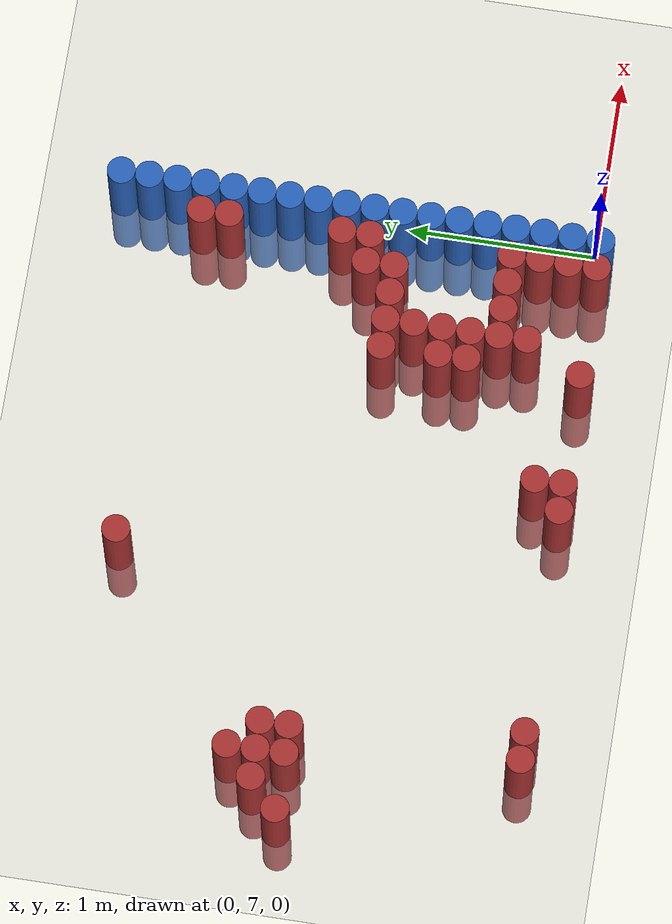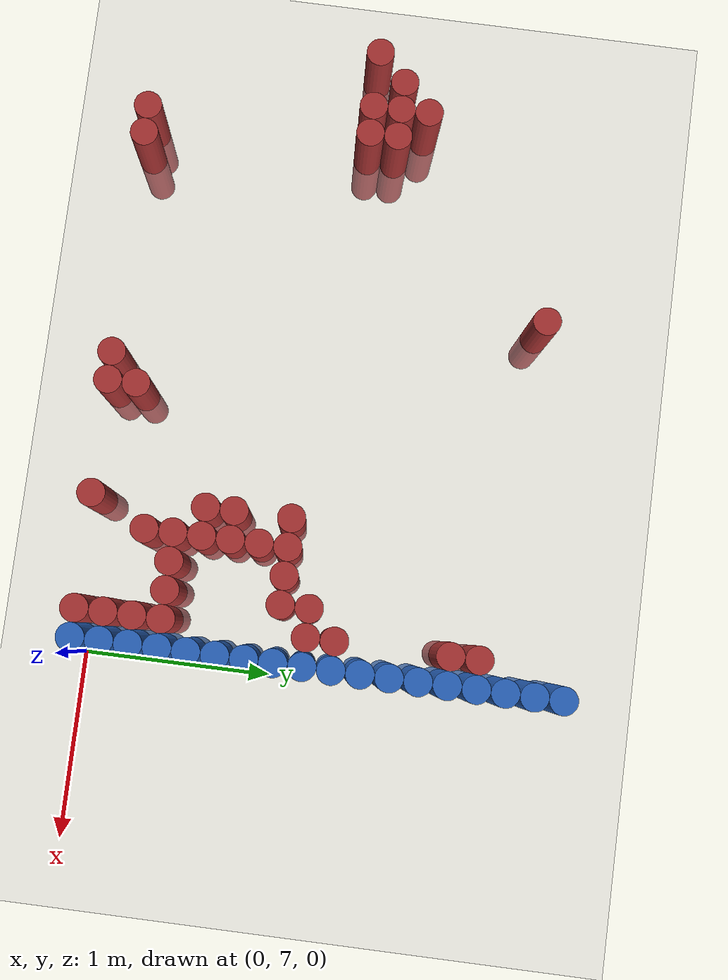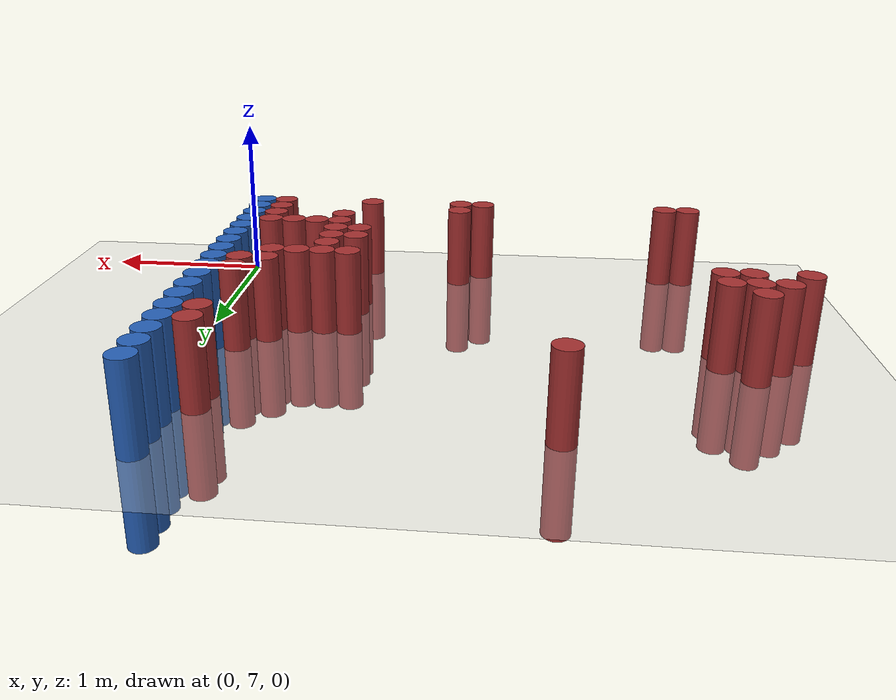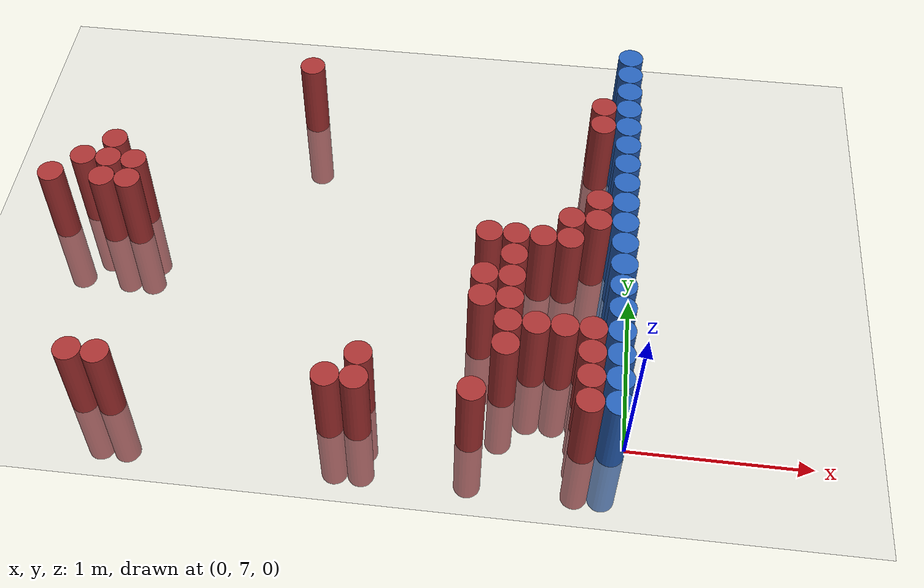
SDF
<sdf version="1.6">
 <world name="default">
  <model name="ground_plane">
   <static>1</static>
   <link name="link">
    <collision name="collision">
     <geometry><plane><normal>0 0 1</normal><size>100 100</size></plane></geometry>
     <surface><friction><ode><mu>100</mu><mu2>50</mu2></ode></friction></surface>
    </collision>
    <visual name="visual">
     <cast_shadows>0</cast_shadows>
     <geometry><plane><normal>0 0 1</normal><size>100 100</size></plane></geometry>
     <material>
      <script><uri>file://media/materials/scripts/gazebo.material</uri><name>Gazebo/Grey</name></script>
     </material>
    </visual>
   </link>
  </model>
  <model name="unit_cylinder_160">
   <static>1</static>
   <pose>-3.375000 8.175000 0.000000 0.000000 0.000000 0.000000</pose>
   <link name="link">
    <inertial>
     <mass>1</mass>
     <inertia><ixx>0.145833</ixx><ixy>0</ixy><ixz>0</ixz><iyy>0.145833</iyy><iyz>0</iyz><izz>0.125</izz></inertia>
    </inertial>
    <collision name="collision">
     <geometry><cylinder><radius>0.075000</radius><length>1</length></cylinder></geometry>
    </collision>
    <visual name="visual">
     <geometry><cylinder><radius>0.075000</radius><length>1</length></cylinder></geometry>
     <material>
      <ambient>0.648000 0.192000 0.192000 1</ambient>
      <diffuse>0.648000 0.192000 0.192000 1</diffuse>
     </material>
     <material>
      <script><name>Gazebo/Grey</name><uri>file://media/materials/scripts/gazebo.material</uri></script>
     </material>
    </visual>
   </link>
  </model>
  <model name="unit_cylinder_161">
   <static>1</static>
   <pose>-3.225000 8.325000 0.000000 0.000000 0.000000 0.000000</pose>
   <link name="link">
    <inertial>
     <mass>1</mass>
     <inertia><ixx>0.145833</ixx><ixy>0</ixy><ixz>0</ixz><iyy>0.145833</iyy><iyz>0</iyz><izz>0.125</izz></inertia>
    </inertial>
    <collision name="collision">
     <geometry><cylinder><radius>0.075000</radius><length>1</length></cylinder></geometry>
    </collision>
    <visual name="visual">
     <geometry><cylinder><radius>0.075000</radius><length>1</length></cylinder></geometry>
     <material>
      <ambient>0.648000 0.192000 0.192000 1</ambient>
      <diffuse>0.648000 0.192000 0.192000 1</diffuse>
     </material>
     <material>
      <script><name>Gazebo/Grey</name><uri>file://media/materials/scripts/gazebo.material</uri></script>
     </material>
    </visual>
   </link>
  </model>
  <model name="unit_cylinder_163">
   <static>1</static>
   <pose>-3.075000 8.175000 0.000000 0.000000 0.000000 0.000000</pose>
   <link name="link">
    <inertial>
     <mass>1</mass>
     <inertia><ixx>0.145833</ixx><ixy>0</ixy><ixz>0</ixz><iyy>0.145833</iyy><iyz>0</iyz><izz>0.125</izz></inertia>
    </inertial>
    <collision name="collision">
     <geometry><cylinder><radius>0.075000</radius><length>1</length></cylinder></geometry>
    </collision>
    <visual name="visual">
     <geometry><cylinder><radius>0.075000</radius><length>1</length></cylinder></geometry>
     <material>
      <ambient>0.648000 0.192000 0.192000 1</ambient>
      <diffuse>0.648000 0.192000 0.192000 1</diffuse>
     </material>
     <material>
      <script><name>Gazebo/Grey</name><uri>file://media/materials/scripts/gazebo.material</uri></script>
     </material>
    </visual>
   </link>
  </model>
  <model name="unit_cylinder_164">
   <static>1</static>
   <pose>-3.075000 8.325000 0.000000 0.000000 0.000000 0.000000</pose>
   <link name="link">
    <inertial>
     <mass>1</mass>
     <inertia><ixx>0.145833</ixx><ixy>0</ixy><ixz>0</ixz><iyy>0.145833</iyy><iyz>0</iyz><izz>0.125</izz></inertia>
    </inertial>
    <collision name="collision">
     <geometry><cylinder><radius>0.075000</radius><length>1</length></cylinder></geometry>
    </collision>
    <visual name="visual">
     <geometry><cylinder><radius>0.075000</radius><length>1</length></cylinder></geometry>
     <material>
      <ambient>0.648000 0.192000 0.192000 1</ambient>
      <diffuse>0.648000 0.192000 0.192000 1</diffuse>
     </material>
     <material>
      <script><name>Gazebo/Grey</name><uri>file://media/materials/scripts/gazebo.material</uri></script>
     </material>
    </visual>
   </link>
  </model>
  <model name="unit_cylinder_165">
   <static>1</static>
   <pose>-3.075000 8.475000 0.000000 0.000000 0.000000 0.000000</pose>
   <link name="link">
    <inertial>
     <mass>1</mass>
     <inertia><ixx>0.145833</ixx><ixy>0</ixy><ixz>0</ixz><iyy>0.145833</iyy><iyz>0</iyz><izz>0.125</izz></inertia>
    </inertial>
    <collision name="collision">
     <geometry><cylinder><radius>0.075000</radius><length>1</length></cylinder></geometry>
    </collision>
    <visual name="visual">
     <geometry><cylinder><radius>0.075000</radius><length>1</length></cylinder></geometry>
     <material>
      <ambient>0.648000 0.192000 0.192000 1</ambient>
      <diffuse>0.648000 0.192000 0.192000 1</diffuse>
     </material>
     <material>
      <script><name>Gazebo/Grey</name><uri>file://media/materials/scripts/gazebo.material</uri></script>
     </material>
    </visual>
   </link>
  </model>
  <model name="unit_cylinder_169">
   <static>1</static>
   <pose>-2.925000 6.975000 0.000000 0.000000 0.000000 0.000000</pose>
   <link name="link">
    <inertial>
     <mass>1</mass>
     <inertia><ixx>0.145833</ixx><ixy>0</ixy><ixz>0</ixz><iyy>0.145833</iyy><iyz>0</iyz><izz>0.125</izz></inertia>
    </inertial>
    <collision name="collision">
     <geometry><cylinder><radius>0.075000</radius><length>1</length></cylinder></geometry>
    </collision>
    <visual name="visual">
     <geometry><cylinder><radius>0.075000</radius><length>1</length></cylinder></geometry>
     <material>
      <ambient>0.648000 0.192000 0.192000 1</ambient>
      <diffuse>0.648000 0.192000 0.192000 1</diffuse>
     </material>
     <material>
      <script><name>Gazebo/Grey</name><uri>file://media/materials/scripts/gazebo.material</uri></script>
     </material>
    </visual>
   </link>
  </model>
  <model name="unit_cylinder_170">
   <static>1</static>
   <pose>-2.925000 8.175000 0.000000 0.000000 0.000000 0.000000</pose>
   <link name="link">
    <inertial>
     <mass>1</mass>
     <inertia><ixx>0.145833</ixx><ixy>0</ixy><ixz>0</ixz><iyy>0.145833</iyy><iyz>0</iyz><izz>0.125</izz></inertia>
    </inertial>
    <collision name="collision">
     <geometry><cylinder><radius>0.075000</radius><length>1</length></cylinder></geometry>
    </collision>
    <visual name="visual">
     <geometry><cylinder><radius>0.075000</radius><length>1</length></cylinder></geometry>
     <material>
      <ambient>0.648000 0.192000 0.192000 1</ambient>
      <diffuse>0.648000 0.192000 0.192000 1</diffuse>
     </material>
     <material>
      <script><name>Gazebo/Grey</name><uri>file://media/materials/scripts/gazebo.material</uri></script>
     </material>
    </visual>
   </link>
  </model>
  <model name="unit_cylinder_171">
   <static>1</static>
   <pose>-2.925000 8.325000 0.000000 0.000000 0.000000 0.000000</pose>
   <link name="link">
    <inertial>
     <mass>1</mass>
     <inertia><ixx>0.145833</ixx><ixy>0</ixy><ixz>0</ixz><iyy>0.145833</iyy><iyz>0</iyz><izz>0.125</izz></inertia>
    </inertial>
    <collision name="collision">
     <geometry><cylinder><radius>0.075000</radius><length>1</length></cylinder></geometry>
    </collision>
    <visual name="visual">
     <geometry><cylinder><radius>0.075000</radius><length>1</length></cylinder></geometry>
     <material>
      <ambient>0.648000 0.192000 0.192000 1</ambient>
      <diffuse>0.648000 0.192000 0.192000 1</diffuse>
     </material>
     <material>
      <script><name>Gazebo/Grey</name><uri>file://media/materials/scripts/gazebo.material</uri></script>
     </material>
    </visual>
   </link>
  </model>
  <model name="unit_cylinder_177">
   <static>1</static>
   <pose>-2.775000 6.975000 0.000000 0.000000 0.000000 0.000000</pose>
   <link name="link">
    <inertial>
     <mass>1</mass>
     <inertia><ixx>0.145833</ixx><ixy>0</ixy><ixz>0</ixz><iyy>0.145833</iyy><iyz>0</iyz><izz>0.125</izz></inertia>
    </inertial>
    <collision name="collision">
     <geometry><cylinder><radius>0.075000</radius><length>1</length></cylinder></geometry>
    </collision>
    <visual name="visual">
     <geometry><cylinder><radius>0.075000</radius><length>1</length></cylinder></geometry>
     <material>
      <ambient>0.648000 0.192000 0.192000 1</ambient>
      <diffuse>0.648000 0.192000 0.192000 1</diffuse>
     </material>
     <material>
      <script><name>Gazebo/Grey</name><uri>file://media/materials/scripts/gazebo.material</uri></script>
     </material>
    </visual>
   </link>
  </model>
  <model name="unit_cylinder_180">
   <static>1</static>
   <pose>-2.025000 9.225000 0.000000 0.000000 0.000000 0.000000</pose>
   <link name="link">
    <inertial>
     <mass>1</mass>
     <inertia><ixx>0.145833</ixx><ixy>0</ixy><ixz>0</ixz><iyy>0.145833</iyy><iyz>0</iyz><izz>0.125</izz></inertia>
    </inertial>
    <collision name="collision">
     <geometry><cylinder><radius>0.075000</radius><length>1</length></cylinder></geometry>
    </collision>
    <visual name="visual">
     <geometry><cylinder><radius>0.075000</radius><length>1</length></cylinder></geometry>
     <material>
      <ambient>0.648000 0.192000 0.192000 1</ambient>
      <diffuse>0.648000 0.192000 0.192000 1</diffuse>
     </material>
     <material>
      <script><name>Gazebo/Grey</name><uri>file://media/materials/scripts/gazebo.material</uri></script>
     </material>
    </visual>
   </link>
  </model>
  <model name="unit_cylinder_187">
   <static>1</static>
   <pose>-1.575000 6.975000 0.000000 0.000000 0.000000 0.000000</pose>
   <link name="link">
    <inertial>
     <mass>1</mass>
     <inertia><ixx>0.145833</ixx><ixy>0</ixy><ixz>0</ixz><iyy>0.145833</iyy><iyz>0</iyz><izz>0.125</izz></inertia>
    </inertial>
    <collision name="collision">
     <geometry><cylinder><radius>0.075000</radius><length>1</length></cylinder></geometry>
    </collision>
    <visual name="visual">
     <geometry><cylinder><radius>0.075000</radius><length>1</length></cylinder></geometry>
     <material>
      <ambient>0.648000 0.192000 0.192000 1</ambient>
      <diffuse>0.648000 0.192000 0.192000 1</diffuse>
     </material>
     <material>
      <script><name>Gazebo/Grey</name><uri>file://media/materials/scripts/gazebo.material</uri></script>
     </material>
    </visual>
   </link>
  </model>
  <model name="unit_cylinder_191">
   <static>1</static>
   <pose>-1.425000 6.975000 0.000000 0.000000 0.000000 0.000000</pose>
   <link name="link">
    <inertial>
     <mass>1</mass>
     <inertia><ixx>0.145833</ixx><ixy>0</ixy><ixz>0</ixz><iyy>0.145833</iyy><iyz>0</iyz><izz>0.125</izz></inertia>
    </inertial>
    <collision name="collision">
     <geometry><cylinder><radius>0.075000</radius><length>1</length></cylinder></geometry>
    </collision>
    <visual name="visual">
     <geometry><cylinder><radius>0.075000</radius><length>1</length></cylinder></geometry>
     <material>
      <ambient>0.648000 0.192000 0.192000 1</ambient>
      <diffuse>0.648000 0.192000 0.192000 1</diffuse>
     </material>
     <material>
      <script><name>Gazebo/Grey</name><uri>file://media/materials/scripts/gazebo.material</uri></script>
     </material>
    </visual>
   </link>
  </model>
  <model name="unit_cylinder_192">
   <static>1</static>
   <pose>-1.425000 7.125000 0.000000 0.000000 0.000000 0.000000</pose>
   <link name="link">
    <inertial>
     <mass>1</mass>
     <inertia><ixx>0.145833</ixx><ixy>0</ixy><ixz>0</ixz><iyy>0.145833</iyy><iyz>0</iyz><izz>0.125</izz></inertia>
    </inertial>
    <collision name="collision">
     <geometry><cylinder><radius>0.075000</radius><length>1</length></cylinder></geometry>
    </collision>
    <visual name="visual">
     <geometry><cylinder><radius>0.075000</radius><length>1</length></cylinder></geometry>
     <material>
      <ambient>0.648000 0.192000 0.192000 1</ambient>
      <diffuse>0.648000 0.192000 0.192000 1</diffuse>
     </material>
     <material>
      <script><name>Gazebo/Grey</name><uri>file://media/materials/scripts/gazebo.material</uri></script>
     </material>
    </visual>
   </link>
  </model>
  <model name="unit_cylinder_202">
   <static>1</static>
   <pose>-0.825000 6.975000 0.000000 0.000000 0.000000 0.000000</pose>
   <link name="link">
    <inertial>
     <mass>1</mass>
     <inertia><ixx>0.145833</ixx><ixy>0</ixy><ixz>0</ixz><iyy>0.145833</iyy><iyz>0</iyz><izz>0.125</izz></inertia>
    </inertial>
    <collision name="collision">
     <geometry><cylinder><radius>0.075000</radius><length>1</length></cylinder></geometry>
    </collision>
    <visual name="visual">
     <geometry><cylinder><radius>0.075000</radius><length>1</length></cylinder></geometry>
     <material>
      <ambient>0.648000 0.192000 0.192000 1</ambient>
      <diffuse>0.648000 0.192000 0.192000 1</diffuse>
     </material>
     <material>
      <script><name>Gazebo/Grey</name><uri>file://media/materials/scripts/gazebo.material</uri></script>
     </material>
    </visual>
   </link>
  </model>
  <model name="unit_cylinder_203">
   <static>1</static>
   <pose>-0.825000 7.575000 0.000000 0.000000 0.000000 0.000000</pose>
   <link name="link">
    <inertial>
     <mass>1</mass>
     <inertia><ixx>0.145833</ixx><ixy>0</ixy><ixz>0</ixz><iyy>0.145833</iyy><iyz>0</iyz><izz>0.125</izz></inertia>
    </inertial>
    <collision name="collision">
     <geometry><cylinder><radius>0.075000</radius><length>1</length></cylinder></geometry>
    </collision>
    <visual name="visual">
     <geometry><cylinder><radius>0.075000</radius><length>1</length></cylinder></geometry>
     <material>
      <ambient>0.648000 0.192000 0.192000 1</ambient>
      <diffuse>0.648000 0.192000 0.192000 1</diffuse>
     </material>
     <material>
      <script><name>Gazebo/Grey</name><uri>file://media/materials/scripts/gazebo.material</uri></script>
     </material>
    </visual>
   </link>
  </model>
  <model name="unit_cylinder_204">
   <static>1</static>
   <pose>-0.825000 7.725000 0.000000 0.000000 0.000000 0.000000</pose>
   <link name="link">
    <inertial>
     <mass>1</mass>
     <inertia><ixx>0.145833</ixx><ixy>0</ixy><ixz>0</ixz><iyy>0.145833</iyy><iyz>0</iyz><izz>0.125</izz></inertia>
    </inertial>
    <collision name="collision">
     <geometry><cylinder><radius>0.075000</radius><length>1</length></cylinder></geometry>
    </collision>
    <visual name="visual">
     <geometry><cylinder><radius>0.075000</radius><length>1</length></cylinder></geometry>
     <material>
      <ambient>0.648000 0.192000 0.192000 1</ambient>
      <diffuse>0.648000 0.192000 0.192000 1</diffuse>
     </material>
     <material>
      <script><name>Gazebo/Grey</name><uri>file://media/materials/scripts/gazebo.material</uri></script>
     </material>
    </visual>
   </link>
  </model>
  <model name="unit_cylinder_205">
   <static>1</static>
   <pose>-0.825000 8.025000 0.000000 0.000000 0.000000 0.000000</pose>
   <link name="link">
    <inertial>
     <mass>1</mass>
     <inertia><ixx>0.145833</ixx><ixy>0</ixy><ixz>0</ixz><iyy>0.145833</iyy><iyz>0</iyz><izz>0.125</izz></inertia>
    </inertial>
    <collision name="collision">
     <geometry><cylinder><radius>0.075000</radius><length>1</length></cylinder></geometry>
    </collision>
    <visual name="visual">
     <geometry><cylinder><radius>0.075000</radius><length>1</length></cylinder></geometry>
     <material>
      <ambient>0.648000 0.192000 0.192000 1</ambient>
      <diffuse>0.648000 0.192000 0.192000 1</diffuse>
     </material>
     <material>
      <script><name>Gazebo/Grey</name><uri>file://media/materials/scripts/gazebo.material</uri></script>
     </material>
    </visual>
   </link>
  </model>
  <model name="unit_cylinder_206">
   <static>1</static>
   <pose>-0.675000 7.275000 0.000000 0.000000 0.000000 0.000000</pose>
   <link name="link">
    <inertial>
     <mass>1</mass>
     <inertia><ixx>0.145833</ixx><ixy>0</ixy><ixz>0</ixz><iyy>0.145833</iyy><iyz>0</iyz><izz>0.125</izz></inertia>
    </inertial>
    <collision name="collision">
     <geometry><cylinder><radius>0.075000</radius><length>1</length></cylinder></geometry>
    </collision>
    <visual name="visual">
     <geometry><cylinder><radius>0.075000</radius><length>1</length></cylinder></geometry>
     <material>
      <ambient>0.648000 0.192000 0.192000 1</ambient>
      <diffuse>0.648000 0.192000 0.192000 1</diffuse>
     </material>
     <material>
      <script><name>Gazebo/Grey</name><uri>file://media/materials/scripts/gazebo.material</uri></script>
     </material>
    </visual>
   </link>
  </model>
  <model name="unit_cylinder_207">
   <static>1</static>
   <pose>-0.675000 7.425000 0.000000 0.000000 0.000000 0.000000</pose>
   <link name="link">
    <inertial>
     <mass>1</mass>
     <inertia><ixx>0.145833</ixx><ixy>0</ixy><ixz>0</ixz><iyy>0.145833</iyy><iyz>0</iyz><izz>0.125</izz></inertia>
    </inertial>
    <collision name="collision">
     <geometry><cylinder><radius>0.075000</radius><length>1</length></cylinder></geometry>
    </collision>
    <visual name="visual">
     <geometry><cylinder><radius>0.075000</radius><length>1</length></cylinder></geometry>
     <material>
      <ambient>0.648000 0.192000 0.192000 1</ambient>
      <diffuse>0.648000 0.192000 0.192000 1</diffuse>
     </material>
     <material>
      <script><name>Gazebo/Grey</name><uri>file://media/materials/scripts/gazebo.material</uri></script>
     </material>
    </visual>
   </link>
  </model>
  <model name="unit_cylinder_208">
   <static>1</static>
   <pose>-0.675000 7.575000 0.000000 0.000000 0.000000 0.000000</pose>
   <link name="link">
    <inertial>
     <mass>1</mass>
     <inertia><ixx>0.145833</ixx><ixy>0</ixy><ixz>0</ixz><iyy>0.145833</iyy><iyz>0</iyz><izz>0.125</izz></inertia>
    </inertial>
    <collision name="collision">
     <geometry><cylinder><radius>0.075000</radius><length>1</length></cylinder></geometry>
    </collision>
    <visual name="visual">
     <geometry><cylinder><radius>0.075000</radius><length>1</length></cylinder></geometry>
     <material>
      <ambient>0.648000 0.192000 0.192000 1</ambient>
      <diffuse>0.648000 0.192000 0.192000 1</diffuse>
     </material>
     <material>
      <script><name>Gazebo/Grey</name><uri>file://media/materials/scripts/gazebo.material</uri></script>
     </material>
    </visual>
   </link>
  </model>
  <model name="unit_cylinder_209">
   <static>1</static>
   <pose>-0.675000 7.725000 0.000000 0.000000 0.000000 0.000000</pose>
   <link name="link">
    <inertial>
     <mass>1</mass>
     <inertia><ixx>0.145833</ixx><ixy>0</ixy><ixz>0</ixz><iyy>0.145833</iyy><iyz>0</iyz><izz>0.125</izz></inertia>
    </inertial>
    <collision name="collision">
     <geometry><cylinder><radius>0.075000</radius><length>1</length></cylinder></geometry>
    </collision>
    <visual name="visual">
     <geometry><cylinder><radius>0.075000</radius><length>1</length></cylinder></geometry>
     <material>
      <ambient>0.648000 0.192000 0.192000 1</ambient>
      <diffuse>0.648000 0.192000 0.192000 1</diffuse>
     </material>
     <material>
      <script><name>Gazebo/Grey</name><uri>file://media/materials/scripts/gazebo.material</uri></script>
     </material>
    </visual>
   </link>
  </model>
  <model name="unit_cylinder_210">
   <static>1</static>
   <pose>-0.675000 7.875000 0.000000 0.000000 0.000000 0.000000</pose>
   <link name="link">
    <inertial>
     <mass>1</mass>
     <inertia><ixx>0.145833</ixx><ixy>0</ixy><ixz>0</ixz><iyy>0.145833</iyy><iyz>0</iyz><izz>0.125</izz></inertia>
    </inertial>
    <collision name="collision">
     <geometry><cylinder><radius>0.075000</radius><length>1</length></cylinder></geometry>
    </collision>
    <visual name="visual">
     <geometry><cylinder><radius>0.075000</radius><length>1</length></cylinder></geometry>
     <material>
      <ambient>0.648000 0.192000 0.192000 1</ambient>
      <diffuse>0.648000 0.192000 0.192000 1</diffuse>
     </material>
     <material>
      <script><name>Gazebo/Grey</name><uri>file://media/materials/scripts/gazebo.material</uri></script>
     </material>
    </visual>
   </link>
  </model>
  <model name="unit_cylinder_211">
   <static>1</static>
   <pose>-0.675000 8.025000 0.000000 0.000000 0.000000 0.000000</pose>
   <link name="link">
    <inertial>
     <mass>1</mass>
     <inertia><ixx>0.145833</ixx><ixy>0</ixy><ixz>0</ixz><iyy>0.145833</iyy><iyz>0</iyz><izz>0.125</izz></inertia>
    </inertial>
    <collision name="collision">
     <geometry><cylinder><radius>0.075000</radius><length>1</length></cylinder></geometry>
    </collision>
    <visual name="visual">
     <geometry><cylinder><radius>0.075000</radius><length>1</length></cylinder></geometry>
     <material>
      <ambient>0.648000 0.192000 0.192000 1</ambient>
      <diffuse>0.648000 0.192000 0.192000 1</diffuse>
     </material>
     <material>
      <script><name>Gazebo/Grey</name><uri>file://media/materials/scripts/gazebo.material</uri></script>
     </material>
    </visual>
   </link>
  </model>
  <model name="unit_cylinder_212">
   <static>1</static>
   <pose>-0.525000 7.425000 0.000000 0.000000 0.000000 0.000000</pose>
   <link name="link">
    <inertial>
     <mass>1</mass>
     <inertia><ixx>0.145833</ixx><ixy>0</ixy><ixz>0</ixz><iyy>0.145833</iyy><iyz>0</iyz><izz>0.125</izz></inertia>
    </inertial>
    <collision name="collision">
     <geometry><cylinder><radius>0.075000</radius><length>1</length></cylinder></geometry>
    </collision>
    <visual name="visual">
     <geometry><cylinder><radius>0.075000</radius><length>1</length></cylinder></geometry>
     <material>
      <ambient>0.648000 0.192000 0.192000 1</ambient>
      <diffuse>0.648000 0.192000 0.192000 1</diffuse>
     </material>
     <material>
      <script><name>Gazebo/Grey</name><uri>file://media/materials/scripts/gazebo.material</uri></script>
     </material>
    </visual>
   </link>
  </model>
  <model name="unit_cylinder_213">
   <static>1</static>
   <pose>-0.525000 8.025000 0.000000 0.000000 0.000000 0.000000</pose>
   <link name="link">
    <inertial>
     <mass>1</mass>
     <inertia><ixx>0.145833</ixx><ixy>0</ixy><ixz>0</ixz><iyy>0.145833</iyy><iyz>0</iyz><izz>0.125</izz></inertia>
    </inertial>
    <collision name="collision">
     <geometry><cylinder><radius>0.075000</radius><length>1</length></cylinder></geometry>
    </collision>
    <visual name="visual">
     <geometry><cylinder><radius>0.075000</radius><length>1</length></cylinder></geometry>
     <material>
      <ambient>0.648000 0.192000 0.192000 1</ambient>
      <diffuse>0.648000 0.192000 0.192000 1</diffuse>
     </material>
     <material>
      <script><name>Gazebo/Grey</name><uri>file://media/materials/scripts/gazebo.material</uri></script>
     </material>
    </visual>
   </link>
  </model>
  <model name="unit_cylinder_217">
   <static>1</static>
   <pose>-0.375000 7.425000 0.000000 0.000000 0.000000 0.000000</pose>
   <link name="link">
    <inertial>
     <mass>1</mass>
     <inertia><ixx>0.145833</ixx><ixy>0</ixy><ixz>0</ixz><iyy>0.145833</iyy><iyz>0</iyz><izz>0.125</izz></inertia>
    </inertial>
    <collision name="collision">
     <geometry><cylinder><radius>0.075000</radius><length>1</length></cylinder></geometry>
    </collision>
    <visual name="visual">
     <geometry><cylinder><radius>0.075000</radius><length>1</length></cylinder></geometry>
     <material>
      <ambient>0.648000 0.192000 0.192000 1</ambient>
      <diffuse>0.648000 0.192000 0.192000 1</diffuse>
     </material>
     <material>
      <script><name>Gazebo/Grey</name><uri>file://media/materials/scripts/gazebo.material</uri></script>
     </material>
    </visual>
   </link>
  </model>
  <model name="unit_cylinder_218">
   <static>1</static>
   <pose>-0.375000 8.025000 0.000000 0.000000 0.000000 0.000000</pose>
   <link name="link">
    <inertial>
     <mass>1</mass>
     <inertia><ixx>0.145833</ixx><ixy>0</ixy><ixz>0</ixz><iyy>0.145833</iyy><iyz>0</iyz><izz>0.125</izz></inertia>
    </inertial>
    <collision name="collision">
     <geometry><cylinder><radius>0.075000</radius><length>1</length></cylinder></geometry>
    </collision>
    <visual name="visual">
     <geometry><cylinder><radius>0.075000</radius><length>1</length></cylinder></geometry>
     <material>
      <ambient>0.648000 0.192000 0.192000 1</ambient>
      <diffuse>0.648000 0.192000 0.192000 1</diffuse>
     </material>
     <material>
      <script><name>Gazebo/Grey</name><uri>file://media/materials/scripts/gazebo.material</uri></script>
     </material>
    </visual>
   </link>
  </model>
  <model name="unit_cylinder_219">
   <static>1</static>
   <pose>-0.375000 8.175000 0.000000 0.000000 0.000000 0.000000</pose>
   <link name="link">
    <inertial>
     <mass>1</mass>
     <inertia><ixx>0.145833</ixx><ixy>0</ixy><ixz>0</ixz><iyy>0.145833</iyy><iyz>0</iyz><izz>0.125</izz></inertia>
    </inertial>
    <collision name="collision">
     <geometry><cylinder><radius>0.075000</radius><length>1</length></cylinder></geometry>
    </collision>
    <visual name="visual">
     <geometry><cylinder><radius>0.075000</radius><length>1</length></cylinder></geometry>
     <material>
      <ambient>0.648000 0.192000 0.192000 1</ambient>
      <diffuse>0.648000 0.192000 0.192000 1</diffuse>
     </material>
     <material>
      <script><name>Gazebo/Grey</name><uri>file://media/materials/scripts/gazebo.material</uri></script>
     </material>
    </visual>
   </link>
  </model>
  <model name="unit_cylinder_232">
   <static>1</static>
   <pose>-0.225000 6.975000 0.000000 0.000000 0.000000 0.000000</pose>
   <link name="link">
    <inertial>
     <mass>1</mass>
     <inertia><ixx>0.145833</ixx><ixy>0</ixy><ixz>0</ixz><iyy>0.145833</iyy><iyz>0</iyz><izz>0.125</izz></inertia>
    </inertial>
    <collision name="collision">
     <geometry><cylinder><radius>0.075000</radius><length>1</length></cylinder></geometry>
    </collision>
    <visual name="visual">
     <geometry><cylinder><radius>0.075000</radius><length>1</length></cylinder></geometry>
     <material>
      <ambient>0.648000 0.192000 0.192000 1</ambient>
      <diffuse>0.648000 0.192000 0.192000 1</diffuse>
     </material>
     <material>
      <script><name>Gazebo/Grey</name><uri>file://media/materials/scripts/gazebo.material</uri></script>
     </material>
    </visual>
   </link>
  </model>
  <model name="unit_cylinder_233">
   <static>1</static>
   <pose>-0.225000 7.125000 0.000000 0.000000 0.000000 0.000000</pose>
   <link name="link">
    <inertial>
     <mass>1</mass>
     <inertia><ixx>0.145833</ixx><ixy>0</ixy><ixz>0</ixz><iyy>0.145833</iyy><iyz>0</iyz><izz>0.125</izz></inertia>
    </inertial>
    <collision name="collision">
     <geometry><cylinder><radius>0.075000</radius><length>1</length></cylinder></geometry>
    </collision>
    <visual name="visual">
     <geometry><cylinder><radius>0.075000</radius><length>1</length></cylinder></geometry>
     <material>
      <ambient>0.648000 0.192000 0.192000 1</ambient>
      <diffuse>0.648000 0.192000 0.192000 1</diffuse>
     </material>
     <material>
      <script><name>Gazebo/Grey</name><uri>file://media/materials/scripts/gazebo.material</uri></script>
     </material>
    </visual>
   </link>
  </model>
  <model name="unit_cylinder_234">
   <static>1</static>
   <pose>-0.225000 7.275000 0.000000 0.000000 0.000000 0.000000</pose>
   <link name="link">
    <inertial>
     <mass>1</mass>
     <inertia><ixx>0.145833</ixx><ixy>0</ixy><ixz>0</ixz><iyy>0.145833</iyy><iyz>0</iyz><izz>0.125</izz></inertia>
    </inertial>
    <collision name="collision">
     <geometry><cylinder><radius>0.075000</radius><length>1</length></cylinder></geometry>
    </collision>
    <visual name="visual">
     <geometry><cylinder><radius>0.075000</radius><length>1</length></cylinder></geometry>
     <material>
      <ambient>0.648000 0.192000 0.192000 1</ambient>
      <diffuse>0.648000 0.192000 0.192000 1</diffuse>
     </material>
     <material>
      <script><name>Gazebo/Grey</name><uri>file://media/materials/scripts/gazebo.material</uri></script>
     </material>
    </visual>
   </link>
  </model>
  <model name="unit_cylinder_235">
   <static>1</static>
   <pose>-0.225000 7.425000 0.000000 0.000000 0.000000 0.000000</pose>
   <link name="link">
    <inertial>
     <mass>1</mass>
     <inertia><ixx>0.145833</ixx><ixy>0</ixy><ixz>0</ixz><iyy>0.145833</iyy><iyz>0</iyz><izz>0.125</izz></inertia>
    </inertial>
    <collision name="collision">
     <geometry><cylinder><radius>0.075000</radius><length>1</length></cylinder></geometry>
    </collision>
    <visual name="visual">
     <geometry><cylinder><radius>0.075000</radius><length>1</length></cylinder></geometry>
     <material>
      <ambient>0.648000 0.192000 0.192000 1</ambient>
      <diffuse>0.648000 0.192000 0.192000 1</diffuse>
     </material>
     <material>
      <script><name>Gazebo/Grey</name><uri>file://media/materials/scripts/gazebo.material</uri></script>
     </material>
    </visual>
   </link>
  </model>
  <model name="unit_cylinder_236">
   <static>1</static>
   <pose>-0.225000 8.175000 0.000000 0.000000 0.000000 0.000000</pose>
   <link name="link">
    <inertial>
     <mass>1</mass>
     <inertia><ixx>0.145833</ixx><ixy>0</ixy><ixz>0</ixz><iyy>0.145833</iyy><iyz>0</iyz><izz>0.125</izz></inertia>
    </inertial>
    <collision name="collision">
     <geometry><cylinder><radius>0.075000</radius><length>1</length></cylinder></geometry>
    </collision>
    <visual name="visual">
     <geometry><cylinder><radius>0.075000</radius><length>1</length></cylinder></geometry>
     <material>
      <ambient>0.648000 0.192000 0.192000 1</ambient>
      <diffuse>0.648000 0.192000 0.192000 1</diffuse>
     </material>
     <material>
      <script><name>Gazebo/Grey</name><uri>file://media/materials/scripts/gazebo.material</uri></script>
     </material>
    </visual>
   </link>
  </model>
  <model name="unit_cylinder_237">
   <static>1</static>
   <pose>-0.225000 8.325000 0.000000 0.000000 0.000000 0.000000</pose>
   <link name="link">
    <inertial>
     <mass>1</mass>
     <inertia><ixx>0.145833</ixx><ixy>0</ixy><ixz>0</ixz><iyy>0.145833</iyy><iyz>0</iyz><izz>0.125</izz></inertia>
    </inertial>
    <collision name="collision">
     <geometry><cylinder><radius>0.075000</radius><length>1</length></cylinder></geometry>
    </collision>
    <visual name="visual">
     <geometry><cylinder><radius>0.075000</radius><length>1</length></cylinder></geometry>
     <material>
      <ambient>0.648000 0.192000 0.192000 1</ambient>
      <diffuse>0.648000 0.192000 0.192000 1</diffuse>
     </material>
     <material>
      <script><name>Gazebo/Grey</name><uri>file://media/materials/scripts/gazebo.material</uri></script>
     </material>
    </visual>
   </link>
  </model>
  <model name="unit_cylinder_238">
   <static>1</static>
   <pose>-0.225000 8.925000 0.000000 0.000000 0.000000 0.000000</pose>
   <link name="link">
    <inertial>
     <mass>1</mass>
     <inertia><ixx>0.145833</ixx><ixy>0</ixy><ixz>0</ixz><iyy>0.145833</iyy><iyz>0</iyz><izz>0.125</izz></inertia>
    </inertial>
    <collision name="collision">
     <geometry><cylinder><radius>0.075000</radius><length>1</length></cylinder></geometry>
    </collision>
    <visual name="visual">
     <geometry><cylinder><radius>0.075000</radius><length>1</length></cylinder></geometry>
     <material>
      <ambient>0.648000 0.192000 0.192000 1</ambient>
      <diffuse>0.648000 0.192000 0.192000 1</diffuse>
     </material>
     <material>
      <script><name>Gazebo/Grey</name><uri>file://media/materials/scripts/gazebo.material</uri></script>
     </material>
    </visual>
   </link>
  </model>
  <model name="unit_cylinder_239">
   <static>1</static>
   <pose>-0.225000 9.075000 0.000000 0.000000 0.000000 0.000000</pose>
   <link name="link">
    <inertial>
     <mass>1</mass>
     <inertia><ixx>0.145833</ixx><ixy>0</ixy><ixz>0</ixz><iyy>0.145833</iyy><iyz>0</iyz><izz>0.125</izz></inertia>
    </inertial>
    <collision name="collision">
     <geometry><cylinder><radius>0.075000</radius><length>1</length></cylinder></geometry>
    </collision>
    <visual name="visual">
     <geometry><cylinder><radius>0.075000</radius><length>1</length></cylinder></geometry>
     <material>
      <ambient>0.648000 0.192000 0.192000 1</ambient>
      <diffuse>0.648000 0.192000 0.192000 1</diffuse>
     </material>
     <material>
      <script><name>Gazebo/Grey</name><uri>file://media/materials/scripts/gazebo.material</uri></script>
     </material>
    </visual>
   </link>
  </model>
  <model name="unit_cylinder_252">
   <static>1</static>
   <pose>-0.075000 6.975000 0.000000 0.000000 0.000000 0.000000</pose>
   <link name="link">
    <inertial>
     <mass>1</mass>
     <inertia><ixx>0.145833</ixx><ixy>0</ixy><ixz>0</ixz><iyy>0.145833</iyy><iyz>0</iyz><izz>0.125</izz></inertia>
    </inertial>
    <collision name="collision">
     <geometry><cylinder><radius>0.075000</radius><length>1</length></cylinder></geometry>
    </collision>
    <visual name="visual">
     <geometry><cylinder><radius>0.075000</radius><length>1</length></cylinder></geometry>
     <material>
      <ambient>0.152000 0.379000 0.720000 1</ambient>
      <diffuse>0.152000 0.379000 0.720000 1</diffuse>
     </material>
     <material>
      <script><name>Gazebo/Grey</name><uri>file://media/materials/scripts/gazebo.material</uri></script>
     </material>
    </visual>
   </link>
  </model>
  <model name="unit_cylinder_253">
   <static>1</static>
   <pose>-0.075000 7.125000 0.000000 0.000000 0.000000 0.000000</pose>
   <link name="link">
    <inertial>
     <mass>1</mass>
     <inertia><ixx>0.145833</ixx><ixy>0</ixy><ixz>0</ixz><iyy>0.145833</iyy><iyz>0</iyz><izz>0.125</izz></inertia>
    </inertial>
    <collision name="collision">
     <geometry><cylinder><radius>0.075000</radius><length>1</length></cylinder></geometry>
    </collision>
    <visual name="visual">
     <geometry><cylinder><radius>0.075000</radius><length>1</length></cylinder></geometry>
     <material>
      <ambient>0.152000 0.379000 0.720000 1</ambient>
      <diffuse>0.152000 0.379000 0.720000 1</diffuse>
     </material>
     <material>
      <script><name>Gazebo/Grey</name><uri>file://media/materials/scripts/gazebo.material</uri></script>
     </material>
    </visual>
   </link>
  </model>
  <model name="unit_cylinder_254">
   <static>1</static>
   <pose>-0.075000 7.275000 0.000000 0.000000 0.000000 0.000000</pose>
   <link name="link">
    <inertial>
     <mass>1</mass>
     <inertia><ixx>0.145833</ixx><ixy>0</ixy><ixz>0</ixz><iyy>0.145833</iyy><iyz>0</iyz><izz>0.125</izz></inertia>
    </inertial>
    <collision name="collision">
     <geometry><cylinder><radius>0.075000</radius><length>1</length></cylinder></geometry>
    </collision>
    <visual name="visual">
     <geometry><cylinder><radius>0.075000</radius><length>1</length></cylinder></geometry>
     <material>
      <ambient>0.152000 0.379000 0.720000 1</ambient>
      <diffuse>0.152000 0.379000 0.720000 1</diffuse>
     </material>
     <material>
      <script><name>Gazebo/Grey</name><uri>file://media/materials/scripts/gazebo.material</uri></script>
     </material>
    </visual>
   </link>
  </model>
  <model name="unit_cylinder_255">
   <static>1</static>
   <pose>-0.075000 7.425000 0.000000 0.000000 0.000000 0.000000</pose>
   <link name="link">
    <inertial>
     <mass>1</mass>
     <inertia><ixx>0.145833</ixx><ixy>0</ixy><ixz>0</ixz><iyy>0.145833</iyy><iyz>0</iyz><izz>0.125</izz></inertia>
    </inertial>
    <collision name="collision">
     <geometry><cylinder><radius>0.075000</radius><length>1</length></cylinder></geometry>
    </collision>
    <visual name="visual">
     <geometry><cylinder><radius>0.075000</radius><length>1</length></cylinder></geometry>
     <material>
      <ambient>0.152000 0.379000 0.720000 1</ambient>
      <diffuse>0.152000 0.379000 0.720000 1</diffuse>
     </material>
     <material>
      <script><name>Gazebo/Grey</name><uri>file://media/materials/scripts/gazebo.material</uri></script>
     </material>
    </visual>
   </link>
  </model>
  <model name="unit_cylinder_256">
   <static>1</static>
   <pose>-0.075000 7.575000 0.000000 0.000000 0.000000 0.000000</pose>
   <link name="link">
    <inertial>
     <mass>1</mass>
     <inertia><ixx>0.145833</ixx><ixy>0</ixy><ixz>0</ixz><iyy>0.145833</iyy><iyz>0</iyz><izz>0.125</izz></inertia>
    </inertial>
    <collision name="collision">
     <geometry><cylinder><radius>0.075000</radius><length>1</length></cylinder></geometry>
    </collision>
    <visual name="visual">
     <geometry><cylinder><radius>0.075000</radius><length>1</length></cylinder></geometry>
     <material>
      <ambient>0.152000 0.379000 0.720000 1</ambient>
      <diffuse>0.152000 0.379000 0.720000 1</diffuse>
     </material>
     <material>
      <script><name>Gazebo/Grey</name><uri>file://media/materials/scripts/gazebo.material</uri></script>
     </material>
    </visual>
   </link>
  </model>
  <model name="unit_cylinder_257">
   <static>1</static>
   <pose>-0.075000 7.725000 0.000000 0.000000 0.000000 0.000000</pose>
   <link name="link">
    <inertial>
     <mass>1</mass>
     <inertia><ixx>0.145833</ixx><ixy>0</ixy><ixz>0</ixz><iyy>0.145833</iyy><iyz>0</iyz><izz>0.125</izz></inertia>
    </inertial>
    <collision name="collision">
     <geometry><cylinder><radius>0.075000</radius><length>1</length></cylinder></geometry>
    </collision>
    <visual name="visual">
     <geometry><cylinder><radius>0.075000</radius><length>1</length></cylinder></geometry>
     <material>
      <ambient>0.152000 0.379000 0.720000 1</ambient>
      <diffuse>0.152000 0.379000 0.720000 1</diffuse>
     </material>
     <material>
      <script><name>Gazebo/Grey</name><uri>file://media/materials/scripts/gazebo.material</uri></script>
     </material>
    </visual>
   </link>
  </model>
  <model name="unit_cylinder_258">
   <static>1</static>
   <pose>-0.075000 7.875000 0.000000 0.000000 0.000000 0.000000</pose>
   <link name="link">
    <inertial>
     <mass>1</mass>
     <inertia><ixx>0.145833</ixx><ixy>0</ixy><ixz>0</ixz><iyy>0.145833</iyy><iyz>0</iyz><izz>0.125</izz></inertia>
    </inertial>
    <collision name="collision">
     <geometry><cylinder><radius>0.075000</radius><length>1</length></cylinder></geometry>
    </collision>
    <visual name="visual">
     <geometry><cylinder><radius>0.075000</radius><length>1</length></cylinder></geometry>
     <material>
      <ambient>0.152000 0.379000 0.720000 1</ambient>
      <diffuse>0.152000 0.379000 0.720000 1</diffuse>
     </material>
     <material>
      <script><name>Gazebo/Grey</name><uri>file://media/materials/scripts/gazebo.material</uri></script>
     </material>
    </visual>
   </link>
  </model>
  <model name="unit_cylinder_259">
   <static>1</static>
   <pose>-0.075000 8.025000 0.000000 0.000000 0.000000 0.000000</pose>
   <link name="link">
    <inertial>
     <mass>1</mass>
     <inertia><ixx>0.145833</ixx><ixy>0</ixy><ixz>0</ixz><iyy>0.145833</iyy><iyz>0</iyz><izz>0.125</izz></inertia>
    </inertial>
    <collision name="collision">
     <geometry><cylinder><radius>0.075000</radius><length>1</length></cylinder></geometry>
    </collision>
    <visual name="visual">
     <geometry><cylinder><radius>0.075000</radius><length>1</length></cylinder></geometry>
     <material>
      <ambient>0.152000 0.379000 0.720000 1</ambient>
      <diffuse>0.152000 0.379000 0.720000 1</diffuse>
     </material>
     <material>
      <script><name>Gazebo/Grey</name><uri>file://media/materials/scripts/gazebo.material</uri></script>
     </material>
    </visual>
   </link>
  </model>
  <model name="unit_cylinder_260">
   <static>1</static>
   <pose>-0.075000 8.175000 0.000000 0.000000 0.000000 0.000000</pose>
   <link name="link">
    <inertial>
     <mass>1</mass>
     <inertia><ixx>0.145833</ixx><ixy>0</ixy><ixz>0</ixz><iyy>0.145833</iyy><iyz>0</iyz><izz>0.125</izz></inertia>
    </inertial>
    <collision name="collision">
     <geometry><cylinder><radius>0.075000</radius><length>1</length></cylinder></geometry>
    </collision>
    <visual name="visual">
     <geometry><cylinder><radius>0.075000</radius><length>1</length></cylinder></geometry>
     <material>
      <ambient>0.152000 0.379000 0.720000 1</ambient>
      <diffuse>0.152000 0.379000 0.720000 1</diffuse>
     </material>
     <material>
      <script><name>Gazebo/Grey</name><uri>file://media/materials/scripts/gazebo.material</uri></script>
     </material>
    </visual>
   </link>
  </model>
  <model name="unit_cylinder_261">
   <static>1</static>
   <pose>-0.075000 8.325000 0.000000 0.000000 0.000000 0.000000</pose>
   <link name="link">
    <inertial>
     <mass>1</mass>
     <inertia><ixx>0.145833</ixx><ixy>0</ixy><ixz>0</ixz><iyy>0.145833</iyy><iyz>0</iyz><izz>0.125</izz></inertia>
    </inertial>
    <collision name="collision">
     <geometry><cylinder><radius>0.075000</radius><length>1</length></cylinder></geometry>
    </collision>
    <visual name="visual">
     <geometry><cylinder><radius>0.075000</radius><length>1</length></cylinder></geometry>
     <material>
      <ambient>0.152000 0.379000 0.720000 1</ambient>
      <diffuse>0.152000 0.379000 0.720000 1</diffuse>
     </material>
     <material>
      <script><name>Gazebo/Grey</name><uri>file://media/materials/scripts/gazebo.material</uri></script>
     </material>
    </visual>
   </link>
  </model>
  <model name="unit_cylinder_262">
   <static>1</static>
   <pose>-0.075000 8.475000 0.000000 0.000000 0.000000 0.000000</pose>
   <link name="link">
    <inertial>
     <mass>1</mass>
     <inertia><ixx>0.145833</ixx><ixy>0</ixy><ixz>0</ixz><iyy>0.145833</iyy><iyz>0</iyz><izz>0.125</izz></inertia>
    </inertial>
    <collision name="collision">
     <geometry><cylinder><radius>0.075000</radius><length>1</length></cylinder></geometry>
    </collision>
    <visual name="visual">
     <geometry><cylinder><radius>0.075000</radius><length>1</length></cylinder></geometry>
     <material>
      <ambient>0.152000 0.379000 0.720000 1</ambient>
      <diffuse>0.152000 0.379000 0.720000 1</diffuse>
     </material>
     <material>
      <script><name>Gazebo/Grey</name><uri>file://media/materials/scripts/gazebo.material</uri></script>
     </material>
    </visual>
   </link>
  </model>
  <model name="unit_cylinder_263">
   <static>1</static>
   <pose>-0.075000 8.625000 0.000000 0.000000 0.000000 0.000000</pose>
   <link name="link">
    <inertial>
     <mass>1</mass>
     <inertia><ixx>0.145833</ixx><ixy>0</ixy><ixz>0</ixz><iyy>0.145833</iyy><iyz>0</iyz><izz>0.125</izz></inertia>
    </inertial>
    <collision name="collision">
     <geometry><cylinder><radius>0.075000</radius><length>1</length></cylinder></geometry>
    </collision>
    <visual name="visual">
     <geometry><cylinder><radius>0.075000</radius><length>1</length></cylinder></geometry>
     <material>
      <ambient>0.152000 0.379000 0.720000 1</ambient>
      <diffuse>0.152000 0.379000 0.720000 1</diffuse>
     </material>
     <material>
      <script><name>Gazebo/Grey</name><uri>file://media/materials/scripts/gazebo.material</uri></script>
     </material>
    </visual>
   </link>
  </model>
  <model name="unit_cylinder_264">
   <static>1</static>
   <pose>-0.075000 8.775000 0.000000 0.000000 0.000000 0.000000</pose>
   <link name="link">
    <inertial>
     <mass>1</mass>
     <inertia><ixx>0.145833</ixx><ixy>0</ixy><ixz>0</ixz><iyy>0.145833</iyy><iyz>0</iyz><izz>0.125</izz></inertia>
    </inertial>
    <collision name="collision">
     <geometry><cylinder><radius>0.075000</radius><length>1</length></cylinder></geometry>
    </collision>
    <visual name="visual">
     <geometry><cylinder><radius>0.075000</radius><length>1</length></cylinder></geometry>
     <material>
      <ambient>0.152000 0.379000 0.720000 1</ambient>
      <diffuse>0.152000 0.379000 0.720000 1</diffuse>
     </material>
     <material>
      <script><name>Gazebo/Grey</name><uri>file://media/materials/scripts/gazebo.material</uri></script>
     </material>
    </visual>
   </link>
  </model>
  <model name="unit_cylinder_265">
   <static>1</static>
   <pose>-0.075000 8.925000 0.000000 0.000000 0.000000 0.000000</pose>
   <link name="link">
    <inertial>
     <mass>1</mass>
     <inertia><ixx>0.145833</ixx><ixy>0</ixy><ixz>0</ixz><iyy>0.145833</iyy><iyz>0</iyz><izz>0.125</izz></inertia>
    </inertial>
    <collision name="collision">
     <geometry><cylinder><radius>0.075000</radius><length>1</length></cylinder></geometry>
    </collision>
    <visual name="visual">
     <geometry><cylinder><radius>0.075000</radius><length>1</length></cylinder></geometry>
     <material>
      <ambient>0.152000 0.379000 0.720000 1</ambient>
      <diffuse>0.152000 0.379000 0.720000 1</diffuse>
     </material>
     <material>
      <script><name>Gazebo/Grey</name><uri>file://media/materials/scripts/gazebo.material</uri></script>
     </material>
    </visual>
   </link>
  </model>
  <model name="unit_cylinder_266">
   <static>1</static>
   <pose>-0.075000 9.075000 0.000000 0.000000 0.000000 0.000000</pose>
   <link name="link">
    <inertial>
     <mass>1</mass>
     <inertia><ixx>0.145833</ixx><ixy>0</ixy><ixz>0</ixz><iyy>0.145833</iyy><iyz>0</iyz><izz>0.125</izz></inertia>
    </inertial>
    <collision name="collision">
     <geometry><cylinder><radius>0.075000</radius><length>1</length></cylinder></geometry>
    </collision>
    <visual name="visual">
     <geometry><cylinder><radius>0.075000</radius><length>1</length></cylinder></geometry>
     <material>
      <ambient>0.152000 0.379000 0.720000 1</ambient>
      <diffuse>0.152000 0.379000 0.720000 1</diffuse>
     </material>
     <material>
      <script><name>Gazebo/Grey</name><uri>file://media/materials/scripts/gazebo.material</uri></script>
     </material>
    </visual>
   </link>
  </model>
  <model name="unit_cylinder_267">
   <static>1</static>
   <pose>-0.075000 9.225000 0.000000 0.000000 0.000000 0.000000</pose>
   <link name="link">
    <inertial>
     <mass>1</mass>
     <inertia><ixx>0.145833</ixx><ixy>0</ixy><ixz>0</ixz><iyy>0.145833</iyy><iyz>0</iyz><izz>0.125</izz></inertia>
    </inertial>
    <collision name="collision">
     <geometry><cylinder><radius>0.075000</radius><length>1</length></cylinder></geometry>
    </collision>
    <visual name="visual">
     <geometry><cylinder><radius>0.075000</radius><length>1</length></cylinder></geometry>
     <material>
      <ambient>0.152000 0.379000 0.720000 1</ambient>
      <diffuse>0.152000 0.379000 0.720000 1</diffuse>
     </material>
     <material>
      <script><name>Gazebo/Grey</name><uri>file://media/materials/scripts/gazebo.material</uri></script>
     </material>
    </visual>
   </link>
  </model>
  <model name="unit_cylinder_268">
   <static>1</static>
   <pose>-0.075000 9.375000 0.000000 0.000000 0.000000 0.000000</pose>
   <link name="link">
    <inertial>
     <mass>1</mass>
     <inertia><ixx>0.145833</ixx><ixy>0</ixy><ixz>0</ixz><iyy>0.145833</iyy><iyz>0</iyz><izz>0.125</izz></inertia>
    </inertial>
    <collision name="collision">
     <geometry><cylinder><radius>0.075000</radius><length>1</length></cylinder></geometry>
    </collision>
    <visual name="visual">
     <geometry><cylinder><radius>0.075000</radius><length>1</length></cylinder></geometry>
     <material>
      <ambient>0.152000 0.379000 0.720000 1</ambient>
      <diffuse>0.152000 0.379000 0.720000 1</diffuse>
     </material>
     <material>
      <script><name>Gazebo/Grey</name><uri>file://media/materials/scripts/gazebo.material</uri></script>
     </material>
    </visual>
   </link>
  </model>
  <model name="unit_cylinder_269">
   <static>1</static>
   <pose>-0.075000 9.525000 0.000000 0.000000 0.000000 0.000000</pose>
   <link name="link">
    <inertial>
     <mass>1</mass>
     <inertia><ixx>0.145833</ixx><ixy>0</ixy><ixz>0</ixz><iyy>0.145833</iyy><iyz>0</iyz><izz>0.125</izz></inertia>
    </inertial>
    <collision name="collision">
     <geometry><cylinder><radius>0.075000</radius><length>1</length></cylinder></geometry>
    </collision>
    <visual name="visual">
     <geometry><cylinder><radius>0.075000</radius><length>1</length></cylinder></geometry>
     <material>
      <ambient>0.152000 0.379000 0.720000 1</ambient>
      <diffuse>0.152000 0.379000 0.720000 1</diffuse>
     </material>
     <material>
      <script><name>Gazebo/Grey</name><uri>file://media/materials/scripts/gazebo.material</uri></script>
     </material>
    </visual>
   </link>
  </model>
 </world>
</sdf>
